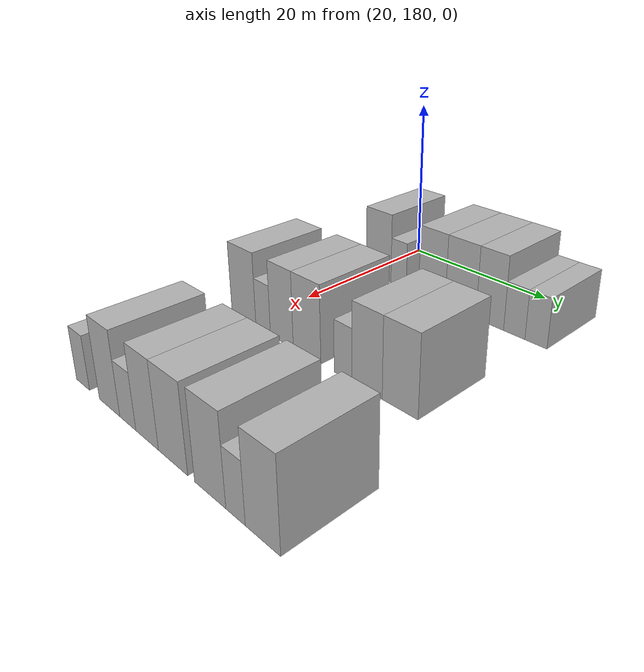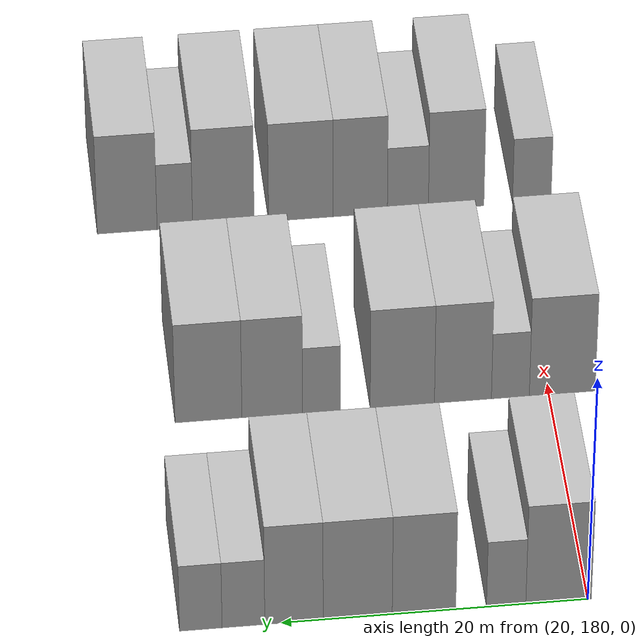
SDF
<sdf version="1.6">
 <world name="default">
  <model name="building_102">
   <static>1</static>
   <pose>25.0000 181.9465 0 0.000000 0.000000 0.000000</pose>
   <link name="link">
    <pose>0 0 4.50 0 0 0</pose>
    <collision name="collision"><geometry><box><size>10.0000 4.2887 9.0000</size></box></geometry></collision>
    <visual name="visual">
     <cast_shadows>0</cast_shadows>
     <geometry><box><size>10.0000 4.2887 9.0000</size></box></geometry>
     <material>
      <script>
       <uri>model://HANNAS_wall/materials/scripts</uri>
       <uri>model://HANNAS_wall/materials/textures</uri>
       <name>vrc/HANNAS_wall</name>
      </script>
     </material>
    </visual>
   </link>
  </model>
  <model name="building_103">
   <static>1</static>
   <pose>25.0000 185.3738 0 0.000000 0.000000 0.000000</pose>
   <link name="link">
    <pose>0 0 3.00 0 0 0</pose>
    <collision name="collision"><geometry><box><size>10.0000 2.5660 6.0000</size></box></geometry></collision>
    <visual name="visual">
     <cast_shadows>0</cast_shadows>
     <geometry><box><size>10.0000 2.5660 6.0000</size></box></geometry>
     <material>
      <script>
       <uri>model://HANNAS_wall/materials/scripts</uri>
       <uri>model://HANNAS_wall/materials/textures</uri>
       <name>vrc/HANNAS_wall</name>
      </script>
     </material>
    </visual>
   </link>
  </model>
  <model name="building_104">
   <static>1</static>
   <pose>25.0000 190.7271 0 0.000000 0.000000 0.000000</pose>
   <link name="link">
    <pose>0 0 4.50 0 0 0</pose>
    <collision name="collision"><geometry><box><size>10.0000 4.1405 9.0000</size></box></geometry></collision>
    <visual name="visual">
     <cast_shadows>0</cast_shadows>
     <geometry><box><size>10.0000 4.1405 9.0000</size></box></geometry>
     <material>
      <script>
       <uri>model://HANNAS_wall/materials/scripts</uri>
       <uri>model://HANNAS_wall/materials/textures</uri>
       <name>vrc/HANNAS_wall</name>
      </script>
     </material>
    </visual>
   </link>
  </model>
  <model name="building_105">
   <static>1</static>
   <pose>25.0000 195.0423 0 0.000000 0.000000 0.000000</pose>
   <link name="link">
    <pose>0 0 4.50 0 0 0</pose>
    <collision name="collision"><geometry><box><size>10.0000 4.4898 9.0000</size></box></geometry></collision>
    <visual name="visual">
     <cast_shadows>0</cast_shadows>
     <geometry><box><size>10.0000 4.4898 9.0000</size></box></geometry>
     <material>
      <script>
       <uri>model://HANNAS_wall/materials/scripts</uri>
       <uri>model://HANNAS_wall/materials/textures</uri>
       <name>vrc/HANNAS_wall</name>
      </script>
     </material>
    </visual>
   </link>
  </model>
  <model name="building_106">
   <static>1</static>
   <pose>25.0000 199.1777 0 0.000000 0.000000 0.000000</pose>
   <link name="link">
    <pose>0 0 4.50 0 0 0</pose>
    <collision name="collision"><geometry><box><size>10.0000 3.7812 9.0000</size></box></geometry></collision>
    <visual name="visual">
     <cast_shadows>0</cast_shadows>
     <geometry><box><size>10.0000 3.7812 9.0000</size></box></geometry>
     <material>
      <script>
       <uri>model://HANNAS_wall/materials/scripts</uri>
       <uri>model://HANNAS_wall/materials/textures</uri>
       <name>vrc/HANNAS_wall</name>
      </script>
     </material>
    </visual>
   </link>
  </model>
  <model name="building_107">
   <static>1</static>
   <pose>25.0000 202.4531 0 0.000000 0.000000 0.000000</pose>
   <link name="link">
    <pose>0 0 3.00 0 0 0</pose>
    <collision name="collision"><geometry><box><size>10.0000 2.7696 6.0000</size></box></geometry></collision>
    <visual name="visual">
     <cast_shadows>0</cast_shadows>
     <geometry><box><size>10.0000 2.7696 6.0000</size></box></geometry>
     <material>
      <script>
       <uri>model://HANNAS_wall/materials/scripts</uri>
       <uri>model://HANNAS_wall/materials/textures</uri>
       <name>vrc/HANNAS_wall</name>
      </script>
     </material>
    </visual>
   </link>
  </model>
  <model name="building_108">
   <static>1</static>
   <pose>25.0000 205.2136 0 0.000000 0.000000 0.000000</pose>
   <link name="link">
    <pose>0 0 3.00 0 0 0</pose>
    <collision name="collision"><geometry><box><size>10.0000 2.7514 6.0000</size></box></geometry></collision>
    <visual name="visual">
     <cast_shadows>0</cast_shadows>
     <geometry><box><size>10.0000 2.7514 6.0000</size></box></geometry>
     <material>
      <script>
       <uri>model://HANNAS_wall/materials/scripts</uri>
       <uri>model://HANNAS_wall/materials/textures</uri>
       <name>vrc/HANNAS_wall</name>
      </script>
     </material>
    </visual>
   </link>
  </model>
  <model name="building_219">
   <static>1</static>
   <pose>44.0000 179.1255 0 0.000000 0.000000 0.000000</pose>
   <link name="link">
    <pose>0 0 4.50 0 0 0</pose>
    <collision name="collision"><geometry><box><size>10.0000 4.4547 9.0000</size></box></geometry></collision>
    <visual name="visual">
     <cast_shadows>0</cast_shadows>
     <geometry><box><size>10.0000 4.4547 9.0000</size></box></geometry>
     <material>
      <script>
       <uri>model://HANNAS_wall/materials/scripts</uri>
       <uri>model://HANNAS_wall/materials/textures</uri>
       <name>vrc/HANNAS_wall</name>
      </script>
     </material>
    </visual>
   </link>
  </model>
  <model name="building_220">
   <static>1</static>
   <pose>44.0000 182.6356 0 0.000000 0.000000 0.000000</pose>
   <link name="link">
    <pose>0 0 3.00 0 0 0</pose>
    <collision name="collision"><geometry><box><size>10.0000 2.5657 6.0000</size></box></geometry></collision>
    <visual name="visual">
     <cast_shadows>0</cast_shadows>
     <geometry><box><size>10.0000 2.5657 6.0000</size></box></geometry>
     <material>
      <script>
       <uri>model://HANNAS_wall/materials/scripts</uri>
       <uri>model://HANNAS_wall/materials/textures</uri>
       <name>vrc/HANNAS_wall</name>
      </script>
     </material>
    </visual>
   </link>
  </model>
  <model name="building_221">
   <static>1</static>
   <pose>44.0000 185.8423 0 0.000000 0.000000 0.000000</pose>
   <link name="link">
    <pose>0 0 4.50 0 0 0</pose>
    <collision name="collision"><geometry><box><size>10.0000 3.8478 9.0000</size></box></geometry></collision>
    <visual name="visual">
     <cast_shadows>0</cast_shadows>
     <geometry><box><size>10.0000 3.8478 9.0000</size></box></geometry>
     <material>
      <script>
       <uri>model://HANNAS_wall/materials/scripts</uri>
       <uri>model://HANNAS_wall/materials/textures</uri>
       <name>vrc/HANNAS_wall</name>
      </script>
     </material>
    </visual>
   </link>
  </model>
  <model name="building_222">
   <static>1</static>
   <pose>44.0000 189.9353 0 0.000000 0.000000 0.000000</pose>
   <link name="link">
    <pose>0 0 4.50 0 0 0</pose>
    <collision name="collision"><geometry><box><size>10.0000 4.3381 9.0000</size></box></geometry></collision>
    <visual name="visual">
     <cast_shadows>0</cast_shadows>
     <geometry><box><size>10.0000 4.3381 9.0000</size></box></geometry>
     <material>
      <script>
       <uri>model://HANNAS_wall/materials/scripts</uri>
       <uri>model://HANNAS_wall/materials/textures</uri>
       <name>vrc/HANNAS_wall</name>
      </script>
     </material>
    </visual>
   </link>
  </model>
  <model name="building_223">
   <static>1</static>
   <pose>44.0000 195.3782 0 0.000000 0.000000 0.000000</pose>
   <link name="link">
    <pose>0 0 3.00 0 0 0</pose>
    <collision name="collision"><geometry><box><size>10.0000 2.5475 6.0000</size></box></geometry></collision>
    <visual name="visual">
     <cast_shadows>0</cast_shadows>
     <geometry><box><size>10.0000 2.5475 6.0000</size></box></geometry>
     <material>
      <script>
       <uri>model://HANNAS_wall/materials/scripts</uri>
       <uri>model://HANNAS_wall/materials/textures</uri>
       <name>vrc/HANNAS_wall</name>
      </script>
     </material>
    </visual>
   </link>
  </model>
  <model name="building_224">
   <static>1</static>
   <pose>44.0000 198.6900 0 0.000000 0.000000 0.000000</pose>
   <link name="link">
    <pose>0 0 4.50 0 0 0</pose>
    <collision name="collision"><geometry><box><size>10.0000 4.0762 9.0000</size></box></geometry></collision>
    <visual name="visual">
     <cast_shadows>0</cast_shadows>
     <geometry><box><size>10.0000 4.0762 9.0000</size></box></geometry>
     <material>
      <script>
       <uri>model://HANNAS_wall/materials/scripts</uri>
       <uri>model://HANNAS_wall/materials/textures</uri>
       <name>vrc/HANNAS_wall</name>
      </script>
     </material>
    </visual>
   </link>
  </model>
  <model name="building_225">
   <static>1</static>
   <pose>44.0000 202.9722 0 0.000000 0.000000 0.000000</pose>
   <link name="link">
    <pose>0 0 4.50 0 0 0</pose>
    <collision name="collision"><geometry><box><size>10.0000 4.4882 9.0000</size></box></geometry></collision>
    <visual name="visual">
     <cast_shadows>0</cast_shadows>
     <geometry><box><size>10.0000 4.4882 9.0000</size></box></geometry>
     <material>
      <script>
       <uri>model://HANNAS_wall/materials/scripts</uri>
       <uri>model://HANNAS_wall/materials/textures</uri>
       <name>vrc/HANNAS_wall</name>
      </script>
     </material>
    </visual>
   </link>
  </model>
  <model name="building_341">
   <static>1</static>
   <pose>63.0000 178.6735 0 0.000000 0.000000 0.000000</pose>
   <link name="link">
    <pose>0 0 3.00 0 0 0</pose>
    <collision name="collision"><geometry><box><size>10.0000 2.7014 6.0000</size></box></geometry></collision>
    <visual name="visual">
     <cast_shadows>0</cast_shadows>
     <geometry><box><size>10.0000 2.7014 6.0000</size></box></geometry>
     <material>
      <script>
       <uri>model://HANNAS_wall/materials/scripts</uri>
       <uri>model://HANNAS_wall/materials/textures</uri>
       <name>vrc/HANNAS_wall</name>
      </script>
     </material>
    </visual>
   </link>
  </model>
  <model name="building_342">
   <static>1</static>
   <pose>63.0000 183.9660 0 0.000000 0.000000 0.000000</pose>
   <link name="link">
    <pose>0 0 4.50 0 0 0</pose>
    <collision name="collision"><geometry><box><size>10.0000 3.8837 9.0000</size></box></geometry></collision>
    <visual name="visual">
     <cast_shadows>0</cast_shadows>
     <geometry><box><size>10.0000 3.8837 9.0000</size></box></geometry>
     <material>
      <script>
       <uri>model://HANNAS_wall/materials/scripts</uri>
       <uri>model://HANNAS_wall/materials/textures</uri>
       <name>vrc/HANNAS_wall</name>
      </script>
     </material>
    </visual>
   </link>
  </model>
  <model name="building_343">
   <static>1</static>
   <pose>63.0000 187.3399 0 0.000000 0.000000 0.000000</pose>
   <link name="link">
    <pose>0 0 3.00 0 0 0</pose>
    <collision name="collision"><geometry><box><size>10.0000 2.8640 6.0000</size></box></geometry></collision>
    <visual name="visual">
     <cast_shadows>0</cast_shadows>
     <geometry><box><size>10.0000 2.8640 6.0000</size></box></geometry>
     <material>
      <script>
       <uri>model://HANNAS_wall/materials/scripts</uri>
       <uri>model://HANNAS_wall/materials/textures</uri>
       <name>vrc/HANNAS_wall</name>
      </script>
     </material>
    </visual>
   </link>
  </model>
  <model name="building_344">
   <static>1</static>
   <pose>63.0000 190.6649 0 0.000000 0.000000 0.000000</pose>
   <link name="link">
    <pose>0 0 4.50 0 0 0</pose>
    <collision name="collision"><geometry><box><size>10.0000 3.7859 9.0000</size></box></geometry></collision>
    <visual name="visual">
     <cast_shadows>0</cast_shadows>
     <geometry><box><size>10.0000 3.7859 9.0000</size></box></geometry>
     <material>
      <script>
       <uri>model://HANNAS_wall/materials/scripts</uri>
       <uri>model://HANNAS_wall/materials/textures</uri>
       <name>vrc/HANNAS_wall</name>
      </script>
     </material>
    </visual>
   </link>
  </model>
  <model name="building_345">
   <static>1</static>
   <pose>63.0000 194.8047 0 0.000000 0.000000 0.000000</pose>
   <link name="link">
    <pose>0 0 4.50 0 0 0</pose>
    <collision name="collision"><geometry><box><size>10.0000 4.4938 9.0000</size></box></geometry></collision>
    <visual name="visual">
     <cast_shadows>0</cast_shadows>
     <geometry><box><size>10.0000 4.4938 9.0000</size></box></geometry>
     <material>
      <script>
       <uri>model://HANNAS_wall/materials/scripts</uri>
       <uri>model://HANNAS_wall/materials/textures</uri>
       <name>vrc/HANNAS_wall</name>
      </script>
     </material>
    </visual>
   </link>
  </model>
  <model name="building_346">
   <static>1</static>
   <pose>63.0000 200.1890 0 0.000000 0.000000 0.000000</pose>
   <link name="link">
    <pose>0 0 4.50 0 0 0</pose>
    <collision name="collision"><geometry><box><size>10.0000 4.2748 9.0000</size></box></geometry></collision>
    <visual name="visual">
     <cast_shadows>0</cast_shadows>
     <geometry><box><size>10.0000 4.2748 9.0000</size></box></geometry>
     <material>
      <script>
       <uri>model://HANNAS_wall/materials/scripts</uri>
       <uri>model://HANNAS_wall/materials/textures</uri>
       <name>vrc/HANNAS_wall</name>
      </script>
     </material>
    </visual>
   </link>
  </model>
  <model name="building_347">
   <static>1</static>
   <pose>63.0000 203.5612 0 0.000000 0.000000 0.000000</pose>
   <link name="link">
    <pose>0 0 3.00 0 0 0</pose>
    <collision name="collision"><geometry><box><size>10.0000 2.4696 6.0000</size></box></geometry></collision>
    <visual name="visual">
     <cast_shadows>0</cast_shadows>
     <geometry><box><size>10.0000 2.4696 6.0000</size></box></geometry>
     <material>
      <script>
       <uri>model://HANNAS_wall/materials/scripts</uri>
       <uri>model://HANNAS_wall/materials/textures</uri>
       <name>vrc/HANNAS_wall</name>
      </script>
     </material>
    </visual>
   </link>
  </model>
  <model name="building_348">
   <static>1</static>
   <pose>63.0000 206.8714 0 0.000000 0.000000 0.000000</pose>
   <link name="link">
    <pose>0 0 4.50 0 0 0</pose>
    <collision name="collision"><geometry><box><size>10.0000 4.1508 9.0000</size></box></geometry></collision>
    <visual name="visual">
     <cast_shadows>0</cast_shadows>
     <geometry><box><size>10.0000 4.1508 9.0000</size></box></geometry>
     <material>
      <script>
       <uri>model://HANNAS_wall/materials/scripts</uri>
       <uri>model://HANNAS_wall/materials/textures</uri>
       <name>vrc/HANNAS_wall</name>
      </script>
     </material>
    </visual>
   </link>
  </model>
 </world>
</sdf>
